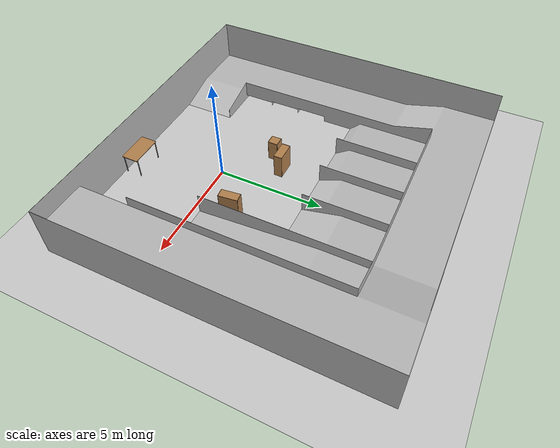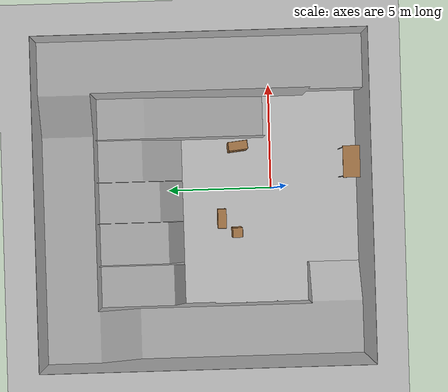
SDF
<sdf version="1.7">
 <world name="default">
  <light name="sun" type="directional">
   <pose>0 0 10 0 -0 0</pose>
   <diffuse>0.8 0.8 0.8 1</diffuse>
   <specular>0.2 0.2 0.2 1</specular>
   <attenuation>
    <range>1000</range>
    <constant>0.9</constant>
    <linear>0.01</linear>
    <quadratic>0.001</quadratic>
   </attenuation>
   <direction>-0.5 0.1 -0.9</direction>
   <spot><inner_angle>0</inner_angle><outer_angle>0</outer_angle><falloff>0</falloff></spot>
  </light>
  <model name="ground_plane">
   <static>1</static>
   <link name="link">
    <collision name="collision">
     <geometry><plane><normal>0 0 1</normal><size>100 100</size></plane></geometry>
     <surface><friction><ode><mu>100</mu><mu2>50</mu2></ode></friction></surface>
    </collision>
    <visual name="visual">
     <cast_shadows>0</cast_shadows>
     <geometry><plane><normal>0 0 1</normal><size>100 100</size></plane></geometry>
     <material>
      <script><uri>file://media/materials/scripts/gazebo.material</uri><name>Gazebo/Grey</name></script>
     </material>
    </visual>
   </link>
  </model>
  <gravity>0 0 -9.8</gravity>
  <magnetic_field>6e-06 2.3e-05 -4.2e-05</magnetic_field>
  <atmosphere type="adiabatic"/>
  <physics type="ode">
   <max_step_size>0.001</max_step_size>
   <real_time_factor>1</real_time_factor>
   <real_time_update_rate>1000</real_time_update_rate>
  </physics>
  <scene><ambient>0.4 0.4 0.4 1</ambient><background>0.7 0.7 0.7 1</background><shadows>1</shadows></scene>
  <audio><device>default</device></audio>
  <spherical_coordinates>
   <surface_model>EARTH_WGS84</surface_model>
   <latitude_deg>0</latitude_deg>
   <longitude_deg>0</longitude_deg>
   <elevation>0</elevation>
   <heading_deg>0</heading_deg>
  </spherical_coordinates>
  <model name="field">
   <link name="body">
    <visual name="visual">
     <geometry>
      <mesh>
       <scale>0.001 0.001 0.001</scale>
       <uri>/home/liang/dev_ws/src/my_bot/models/field/meshes/field.STL</uri>
      </mesh>
     </geometry>
    </visual>
    <collision name="fieldcollision">
     <geometry>
      <mesh>
       <scale>0.001 0.001 0.001</scale>
       <uri>/home/liang/dev_ws/src/my_bot/models/field/meshes/field.STL</uri>
      </mesh>
      <surface><friction><ode><mu>1.2</mu><mu2>1.2</mu2></ode></friction></surface>
     </geometry>
    </collision>
    <inertial>
     <inertia><ixx>1</ixx><ixy>0</ixy><ixz>0</ixz><iyy>1</iyy><iyz>0</iyz><izz>1</izz></inertia>
     <mass>1</mass>
    </inertial>
   </link>
   <pose>-8.02933 10.8258 -0.002583 1.57081 0.000417 0.001335</pose>
   <static>1</static>
  </model>
  <model name="bookshelf">
   <static>1</static>
   <link name="link">
    <inertial><mass>1</mass></inertial>
    <collision name="back">
     <pose>0 0.005 0.6 0 -0 0</pose>
     <geometry><box><size>0.9 0.01 1.2</size></box></geometry>
    </collision>
    <visual name="visual1">
     <pose>0 0.005 0.6 0 -0 0</pose>
     <geometry><box><size>0.9 0.01 1.2</size></box></geometry>
     <material>
      <script><uri>file://media/materials/scripts/gazebo.material</uri><name>Gazebo/Wood</name></script>
     </material>
    </visual>
    <collision name="left_side">
     <pose>0.45 -0.195 0.6 0 -0 0</pose>
     <geometry><box><size>0.02 0.4 1.2</size></box></geometry>
    </collision>
    <visual name="visual2">
     <pose>0.45 -0.195 0.6 0 -0 0</pose>
     <geometry><box><size>0.02 0.4 1.2</size></box></geometry>
     <material>
      <script><uri>file://media/materials/scripts/gazebo.material</uri><name>Gazebo/Wood</name></script>
     </material>
    </visual>
    <collision name="right_side">
     <pose>-0.45 -0.195 0.6 0 -0 0</pose>
     <geometry><box><size>0.02 0.4 1.2</size></box></geometry>
    </collision>
    <visual name="visual3">
     <pose>-0.45 -0.195 0.6 0 -0 0</pose>
     <geometry><box><size>0.02 0.4 1.2</size></box></geometry>
     <material>
      <script><uri>file://media/materials/scripts/gazebo.material</uri><name>Gazebo/Wood</name></script>
     </material>
    </visual>
    <collision name="bottom">
     <pose>0 -0.195 0.03 0 -0 0</pose>
     <geometry><box><size>0.88 0.4 0.06</size></box></geometry>
    </collision>
    <visual name="visual4">
     <pose>0 -0.195 0.03 0 -0 0</pose>
     <geometry><box><size>0.88 0.4 0.06</size></box></geometry>
     <material>
      <script><uri>file://media/materials/scripts/gazebo.material</uri><name>Gazebo/Wood</name></script>
     </material>
    </visual>
    <collision name="top">
     <pose>0 -0.195 1.19 0 -0 0</pose>
     <geometry><box><size>0.88 0.4 0.02</size></box></geometry>
    </collision>
    <visual name="visual5">
     <pose>0 -0.195 1.19 0 -0 0</pose>
     <geometry><box><size>0.88 0.4 0.02</size></box></geometry>
     <material>
      <script><uri>file://media/materials/scripts/gazebo.material</uri><name>Gazebo/Wood</name></script>
     </material>
    </visual>
    <collision name="low_shelf">
     <pose>0 -0.195 0.43 0 -0 0</pose>
     <geometry><box><size>0.88 0.4 0.02</size></box></geometry>
    </collision>
    <visual name="visual6">
     <pose>0 -0.195 0.43 0 -0 0</pose>
     <geometry><box><size>0.88 0.4 0.02</size></box></geometry>
     <material>
      <script><uri>file://media/materials/scripts/gazebo.material</uri><name>Gazebo/Wood</name></script>
     </material>
    </visual>
    <collision name="high_shelf">
     <pose>0 -0.195 0.8 0 -0 0</pose>
     <geometry><box><size>0.88 0.4 0.02</size></box></geometry>
    </collision>
    <visual name="visual7">
     <pose>0 -0.195 0.8 0 -0 0</pose>
     <geometry><box><size>0.88 0.4 0.02</size></box></geometry>
     <material>
      <script><uri>file://media/materials/scripts/gazebo.material</uri><name>Gazebo/Wood</name></script>
     </material>
    </visual>
   </link>
   <pose>-1.39057 2.6583 0 0 -0 0</pose>
  </model>
  <model name="cabinet">
   <static>1</static>
   <link name="cabinet_bottom_plate">
    <inertial>
     <pose>0 0 -1 0 -0 0</pose>
     <inertia><ixx>2.05</ixx><ixy>0</ixy><ixz>0</ixz><iyy>2.05</iyy><iyz>0</iyz><izz>2.05</izz></inertia>
     <mass>25</mass>
    </inertial>
    <collision name="cabinet_bottom_plate_geom">
     <pose>0 0 0.01 0 -0 0</pose>
     <geometry><box><size>0.45 0.45 0.02</size></box></geometry>
    </collision>
    <visual name="cabinet_bottom_plate_geom_visual">
     <pose>0 0 0.01 0 -0 0</pose>
     <geometry><box><size>0.45 0.45 0.02</size></box></geometry>
     <material>
      <script><uri>file://media/materials/scripts/gazebo.material</uri><name>Gazebo/Wood</name></script>
     </material>
    </visual>
    <collision name="cabinet_bottom_plate_geom_cabinet_back_plate">
     <pose>0.235 0 0.51 0 -0 0</pose>
     <geometry><box><size>0.02 0.45 1.02</size></box></geometry>
    </collision>
    <visual name="cabinet_bottom_plate_geom_cabinet_back_plate_visual">
     <pose>0.235 0 0.51 0 -0 0</pose>
     <geometry><box><size>0.02 0.45 1.02</size></box></geometry>
     <material>
      <script><uri>file://media/materials/scripts/gazebo.material</uri><name>Gazebo/Wood</name></script>
     </material>
    </visual>
    <collision name="cabinet_bottom_plate_geom_cabinet_left_plate">
     <pose>0 0.235 0.51 0 -0 0</pose>
     <geometry><box><size>0.45 0.02 1.02</size></box></geometry>
    </collision>
    <visual name="cabinet_bottom_plate_geom_cabinet_left_plate_visual">
     <pose>0 0.235 0.51 0 -0 0</pose>
     <geometry><box><size>0.45 0.02 1.02</size></box></geometry>
     <material>
      <script><uri>file://media/materials/scripts/gazebo.material</uri><name>Gazebo/Wood</name></script>
     </material>
    </visual>
    <collision name="cabinet_bottom_plate_geom_cabinet_middle_plate">
     <pose>0 0 0.51 0 -0 0</pose>
     <geometry><box><size>0.45 0.45 0.02</size></box></geometry>
    </collision>
    <visual name="cabinet_bottom_plate_geom_cabinet_middle_plate_visual">
     <pose>0 0 0.51 0 -0 0</pose>
     <geometry><box><size>0.45 0.45 0.02</size></box></geometry>
     <material>
      <script><uri>file://media/materials/scripts/gazebo.material</uri><name>Gazebo/Wood</name></script>
     </material>
    </visual>
    <collision name="cabinet_bottom_plate_geom_cabinet_right_plate">
     <pose>0 -0.235 0.51 0 -0 0</pose>
     <geometry><box><size>0.45 0.02 1.02</size></box></geometry>
    </collision>
    <visual name="cabinet_bottom_plate_geom_cabinet_right_plate_visual">
     <pose>0 -0.235 0.51 0 -0 0</pose>
     <geometry><box><size>0.45 0.02 1.02</size></box></geometry>
     <material>
      <script><uri>file://media/materials/scripts/gazebo.material</uri><name>Gazebo/Wood</name></script>
     </material>
    </visual>
    <collision name="cabinet_bottom_plate_geom_cabinet_top_plate">
     <pose>0 0 1.01 0 -0 0</pose>
     <geometry><box><size>0.45 0.45 0.02</size></box></geometry>
    </collision>
    <visual name="cabinet_bottom_plate_geom_cabinet_top_plate_visual">
     <pose>0 0 1.01 0 -0 0</pose>
     <geometry><box><size>0.45 0.45 0.02</size></box></geometry>
     <material>
      <script><uri>file://media/materials/scripts/gazebo.material</uri><name>Gazebo/Wood</name></script>
     </material>
    </visual>
   </link>
   <pose>-2.0743 1.74743 0 0 -0 0</pose>
  </model>
  <model name="bookshelf_0">
   <static>1</static>
   <link name="link">
    <inertial><mass>1</mass></inertial>
    <collision name="back">
     <pose>0 0.005 0.6 0 -0 0</pose>
     <geometry><box><size>0.9 0.01 1.2</size></box></geometry>
    </collision>
    <visual name="visual1">
     <pose>0 0.005 0.6 0 -0 0</pose>
     <geometry><box><size>0.9 0.01 1.2</size></box></geometry>
     <material>
      <script><uri>file://media/materials/scripts/gazebo.material</uri><name>Gazebo/Wood</name></script>
     </material>
    </visual>
    <collision name="left_side">
     <pose>0.45 -0.195 0.6 0 -0 0</pose>
     <geometry><box><size>0.02 0.4 1.2</size></box></geometry>
    </collision>
    <visual name="visual2">
     <pose>0.45 -0.195 0.6 0 -0 0</pose>
     <geometry><box><size>0.02 0.4 1.2</size></box></geometry>
     <material>
      <script><uri>file://media/materials/scripts/gazebo.material</uri><name>Gazebo/Wood</name></script>
     </material>
    </visual>
    <collision name="right_side">
     <pose>-0.45 -0.195 0.6 0 -0 0</pose>
     <geometry><box><size>0.02 0.4 1.2</size></box></geometry>
    </collision>
    <visual name="visual3">
     <pose>-0.45 -0.195 0.6 0 -0 0</pose>
     <geometry><box><size>0.02 0.4 1.2</size></box></geometry>
     <material>
      <script><uri>file://media/materials/scripts/gazebo.material</uri><name>Gazebo/Wood</name></script>
     </material>
    </visual>
    <collision name="bottom">
     <pose>0 -0.195 0.03 0 -0 0</pose>
     <geometry><box><size>0.88 0.4 0.06</size></box></geometry>
    </collision>
    <visual name="visual4">
     <pose>0 -0.195 0.03 0 -0 0</pose>
     <geometry><box><size>0.88 0.4 0.06</size></box></geometry>
     <material>
      <script><uri>file://media/materials/scripts/gazebo.material</uri><name>Gazebo/Wood</name></script>
     </material>
    </visual>
    <collision name="top">
     <pose>0 -0.195 1.19 0 -0 0</pose>
     <geometry><box><size>0.88 0.4 0.02</size></box></geometry>
    </collision>
    <visual name="visual5">
     <pose>0 -0.195 1.19 0 -0 0</pose>
     <geometry><box><size>0.88 0.4 0.02</size></box></geometry>
     <material>
      <script><uri>file://media/materials/scripts/gazebo.material</uri><name>Gazebo/Wood</name></script>
     </material>
    </visual>
    <collision name="low_shelf">
     <pose>0 -0.195 0.43 0 -0 0</pose>
     <geometry><box><size>0.88 0.4 0.02</size></box></geometry>
    </collision>
    <visual name="visual6">
     <pose>0 -0.195 0.43 0 -0 0</pose>
     <geometry><box><size>0.88 0.4 0.02</size></box></geometry>
     <material>
      <script><uri>file://media/materials/scripts/gazebo.material</uri><name>Gazebo/Wood</name></script>
     </material>
    </visual>
    <collision name="high_shelf">
     <pose>0 -0.195 0.8 0 -0 0</pose>
     <geometry><box><size>0.88 0.4 0.02</size></box></geometry>
    </collision>
    <visual name="visual7">
     <pose>0 -0.195 0.8 0 -0 0</pose>
     <geometry><box><size>0.88 0.4 0.02</size></box></geometry>
     <material>
      <script><uri>file://media/materials/scripts/gazebo.material</uri><name>Gazebo/Wood</name></script>
     </material>
    </visual>
   </link>
   <pose>2.19976 1.66016 0 0 0 -1.46154</pose>
  </model>
  <model name="table">
   <static>1</static>
   <link name="link">
    <collision name="surface">
     <pose>0 0 1 0 -0 0</pose>
     <geometry><box><size>1.5 0.8 0.03</size></box></geometry>
     <surface><friction><ode><mu>0.6</mu><mu2>0.6</mu2></ode></friction></surface>
    </collision>
    <visual name="visual1">
     <pose>0 0 1 0 -0 0</pose>
     <geometry><box><size>1.5 0.8 0.03</size></box></geometry>
     <material>
      <script><uri>file://media/materials/scripts/gazebo.material</uri><name>Gazebo/Wood</name></script>
     </material>
    </visual>
    <collision name="front_left_leg">
     <pose>0.68 0.38 0.5 0 -0 0</pose>
     <geometry><cylinder><radius>0.02</radius><length>1</length></cylinder></geometry>
    </collision>
    <visual name="front_left_leg">
     <pose>0.68 0.38 0.5 0 -0 0</pose>
     <geometry><cylinder><radius>0.02</radius><length>1</length></cylinder></geometry>
     <material>
      <script><uri>file://media/materials/scripts/gazebo.material</uri><name>Gazebo/Grey</name></script>
     </material>
    </visual>
    <collision name="front_right_leg">
     <pose>0.68 -0.38 0.5 0 -0 0</pose>
     <geometry><cylinder><radius>0.02</radius><length>1</length></cylinder></geometry>
    </collision>
    <visual name="front_right_leg">
     <pose>0.68 -0.38 0.5 0 -0 0</pose>
     <geometry><cylinder><radius>0.02</radius><length>1</length></cylinder></geometry>
     <material>
      <script><uri>file://media/materials/scripts/gazebo.material</uri><name>Gazebo/Grey</name></script>
     </material>
    </visual>
    <collision name="back_right_leg">
     <pose>-0.68 -0.38 0.5 0 -0 0</pose>
     <geometry><cylinder><radius>0.02</radius><length>1</length></cylinder></geometry>
    </collision>
    <visual name="back_right_leg">
     <pose>-0.68 -0.38 0.5 0 -0 0</pose>
     <geometry><cylinder><radius>0.02</radius><length>1</length></cylinder></geometry>
     <material>
      <script><uri>file://media/materials/scripts/gazebo.material</uri><name>Gazebo/Grey</name></script>
     </material>
    </visual>
    <collision name="back_left_leg">
     <pose>-0.68 0.38 0.5 0 -0 0</pose>
     <geometry><cylinder><radius>0.02</radius><length>1</length></cylinder></geometry>
    </collision>
    <visual name="back_left_leg">
     <pose>-0.68 0.38 0.5 0 -0 0</pose>
     <geometry><cylinder><radius>0.02</radius><length>1</length></cylinder></geometry>
     <material>
      <script><uri>file://media/materials/scripts/gazebo.material</uri><name>Gazebo/Grey</name></script>
     </material>
    </visual>
   </link>
   <pose>1.12647 -3.70079 -0.035802 0 -0 0</pose>
  </model>
 </world>
</sdf>
